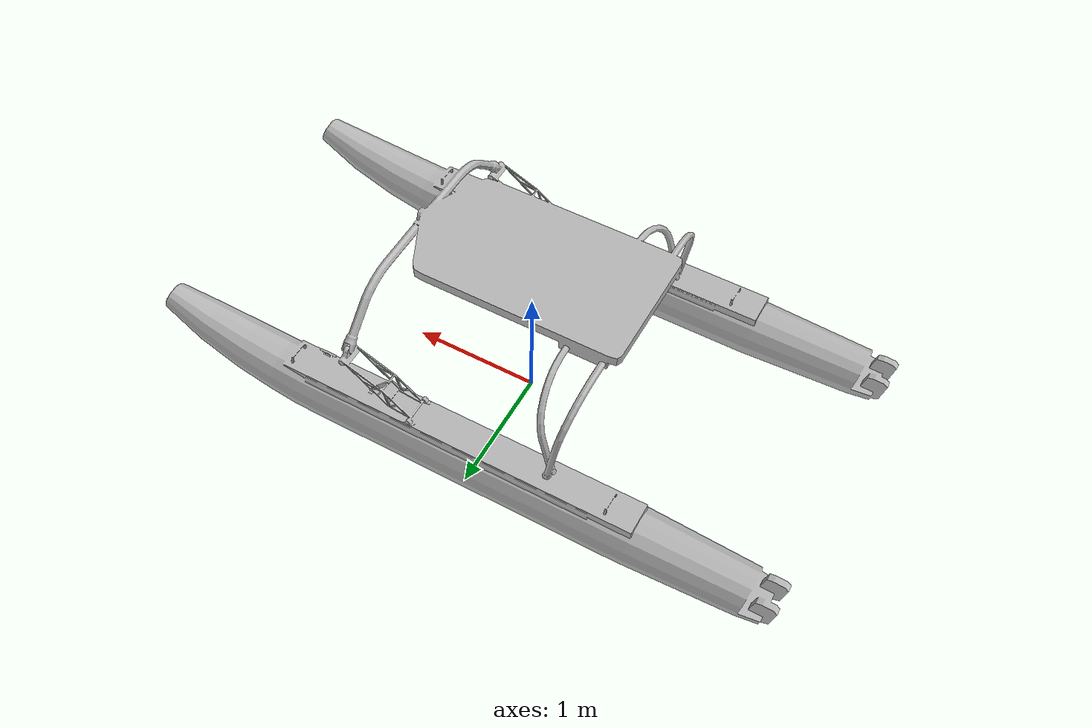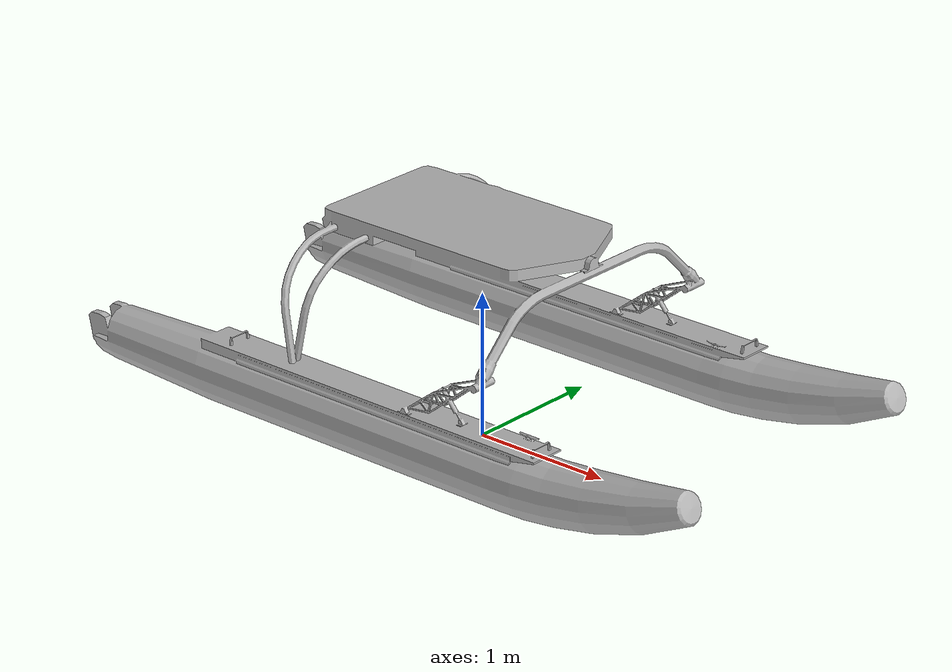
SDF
<?xml version='1.0'?>
<sdf version='1.6'>
  <model name='wamv2'>
    <pose>0 0 0.2 0 0 0</pose>
    <static>false</static>

    <!-- Hydrodynamics Plugin -->
    <plugin name="hydrodynamics" filename="libHydrodynamicsPlugin.so">
      <wave_model>ocean</wave_model>
      <damping_on>true</damping_on>
      <viscous_drag_on>true</viscous_drag_on>
      <pressure_drag_on>true</pressure_drag_on>
      <markers>
        <update_rate>30</update_rate>
        <water_patch>false</water_patch>
        <waterline>false</waterline>
        <underwater_surface>false</underwater_surface>
      </markers>
    </plugin>

    <!-- Add planar move plugin with namespaced topics -->
    <plugin name="planar_move" filename="libgazebo_ros_planar_move.so">
      <commandTopic>/wamv2/cmd_vel</commandTopic>
      <odometryTopic>/wamv2/odom</odometryTopic>
      <odometryFrame>wamv2/odom</odometryFrame>
      <robotBaseFrame>wamv2/base_link</robotBaseFrame>
      <odometryRate>20.0</odometryRate>
    </plugin>

    <link name="base_link">
      <velocity_decay>
        <linear>0.05</linear>
        <angular>0.05</angular>
      </velocity_decay>

      <visual name="base_visual">
        <geometry>
          <mesh>
            <uri>model://wam-v/meshes/WAM-V-Base.dae</uri>
          </mesh>
        </geometry>
      </visual>

      <collision name="base_collision">
        <geometry>
          <mesh>
            <uri>model://wam-v/meshes/wam-v-base_collision_406.stl</uri>
          </mesh>
        </geometry>
      </collision>

      <inertial>
        <pose>0 0 0 0 0 0</pose>
        <mass>180</mass>
        <inertia>
          <ixx>120</ixx>
          <ixy>0</ixy>
          <iyy>393</iyy>
          <iyz>0</iyz>
          <izz>446</izz>
        </inertia>
      </inertial>
    </link>
  </model>
</sdf>
